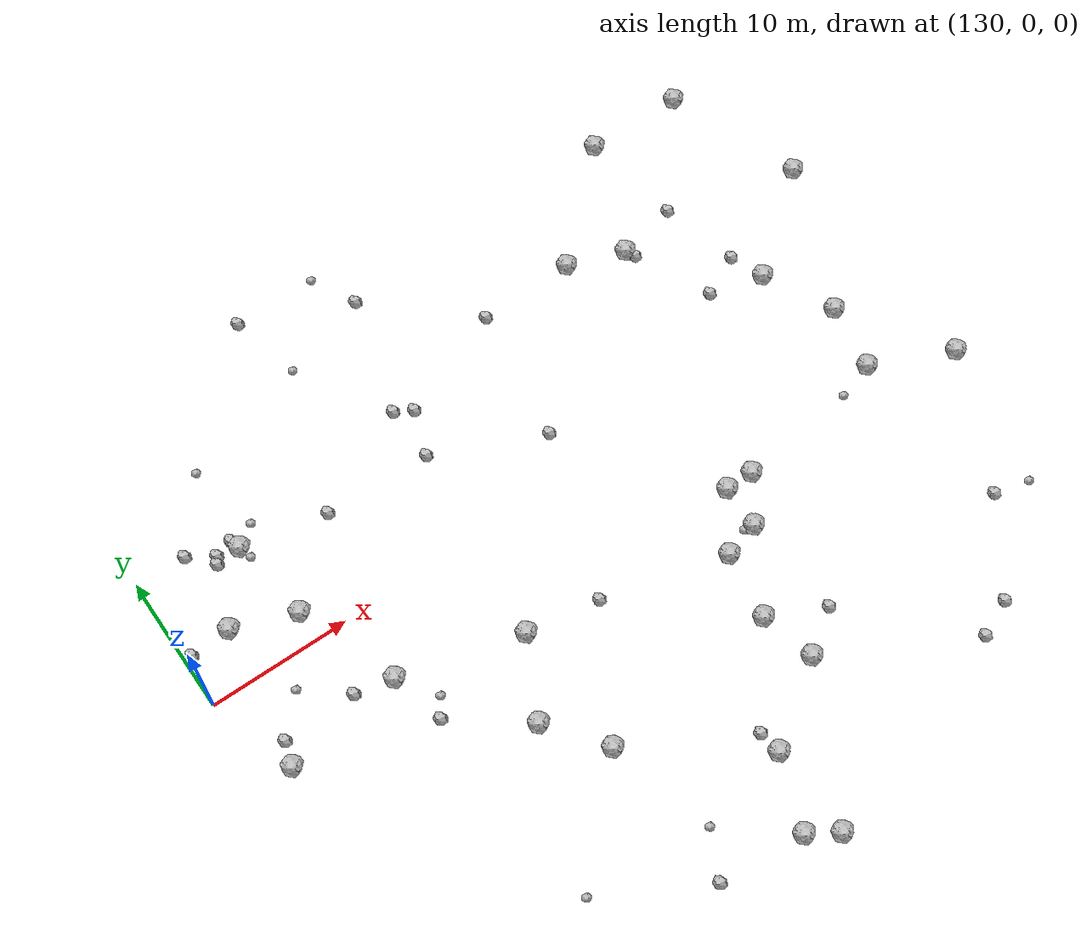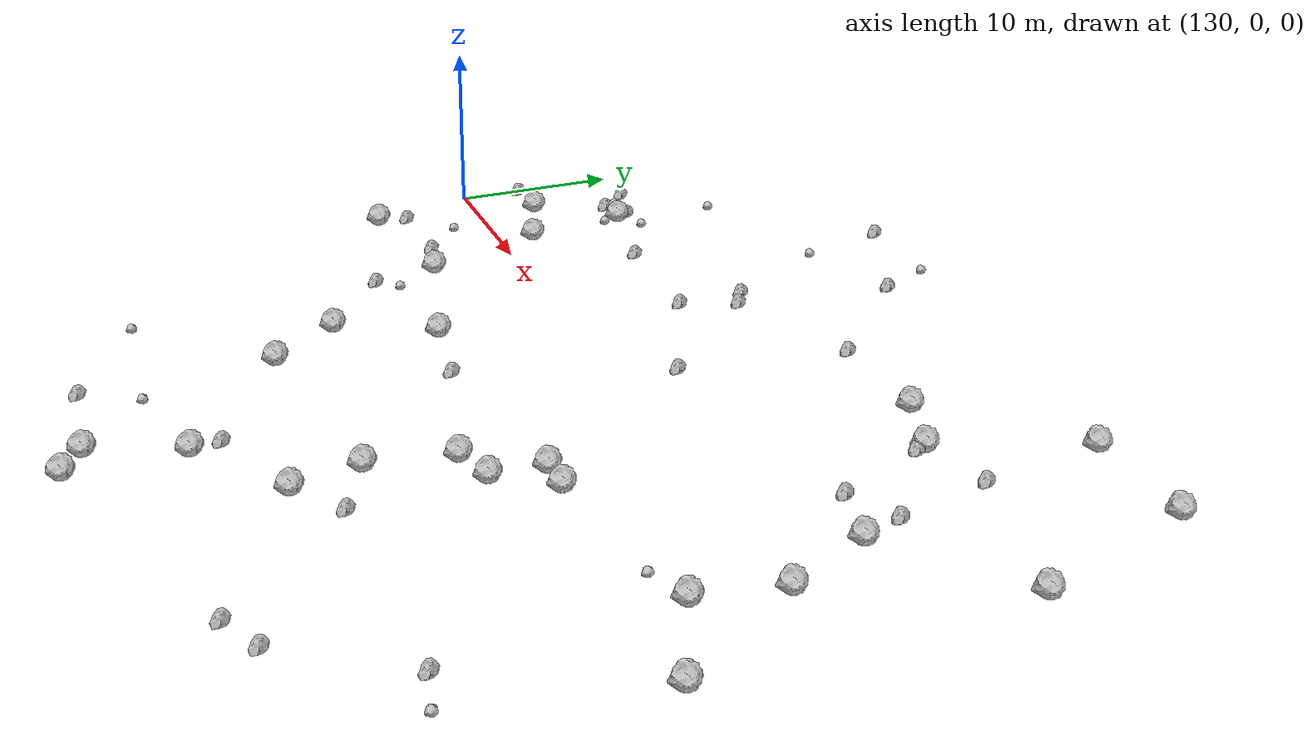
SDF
<sdf version="1.6">
 <world name="default">
  <include><uri>model://sun</uri></include>
  <model name="rock1_4_1">
   <include><uri>model://rock1</uri><pose>179.4233193781346 -4.788998100619832 0.5 0 0 0</pose></include>
  </model>
  <model name="rock1_4_2">
   <include><uri>model://rock1</uri><pose>158.15743904297324 -29.693134949644346 0.5 0 0 0</pose></include>
  </model>
  <model name="rock1_4_3">
   <include><uri>model://rock1</uri><pose>174.076537335667 20.308973531266645 0.5 0 0 0</pose></include>
  </model>
  <model name="rock1_4_4">
   <include><uri>model://rock1</uri><pose>133.47796123061727 3.7555610768192054 0.5 0 0 0</pose></include>
  </model>
  <model name="rock1_4_5">
   <include><uri>model://rock1</uri><pose>163.6280769529148 -19.343580105658702 0.5 0 0 0</pose></include>
  </model>
  <model name="rock1_4_6">
   <include><uri>model://rock1</uri><pose>185.180116824916 -7.347212345162937 0.5 0 0 0</pose></include>
  </model>
  <model name="rock1_4_7">
   <include><uri>model://rock1</uri><pose>163.41217308457206 -10.606714556488932 0.5 0 0 0</pose></include>
  </model>
  <model name="rock1_4_8">
   <include><uri>model://rock1</uri><pose>156.11835764479486 -28.408083762254655 0.5 0 0 0</pose></include>
  </model>
  <model name="rock1_4_9">
   <include><uri>model://rock1</uri><pose>168.12582563927776 -6.714252665071765 0.5 0 0 0</pose></include>
  </model>
  <model name="rock1_4_10">
   <include><uri>model://rock1</uri><pose>166.06387102436122 -6.7461950818041885 0.5 0 0 0</pose></include>
  </model>
  <model name="rock1_4_11">
   <include><uri>model://rock1</uri><pose>180.24713813117995 -0.014623437168733489 0.5 0 0 0</pose></include>
  </model>
  <model name="rock1_4_12">
   <include><uri>model://rock1</uri><pose>162.64235959858513 -15.416700261162731 0.5 0 0 0</pose></include>
  </model>
  <model name="rock1_4_13">
   <include><uri>model://rock1</uri><pose>149.4902388919994 -17.00719016924984 0.5 0 0 0</pose></include>
  </model>
  <model name="rock1_4_14">
   <include><uri>model://rock1</uri><pose>177.7285309436361 4.9363151266045975 0.5 0 0 0</pose></include>
  </model>
  <model name="rock1_4_15">
   <include><uri>model://rock1</uri><pose>158.03112286529137 -23.254799051644866 0.5 0 0 0</pose></include>
  </model>
  <model name="rock1_4_16">
   <include><uri>model://rock1</uri><pose>166.8865678438358 13.41355340934011 0.5 0 0 0</pose></include>
  </model>
  <model name="rock1_4_17">
   <include><uri>model://rock1</uri><pose>170.94679628920525 12.0215076721434 0.5 0 0 0</pose></include>
  </model>
  <model name="rock1_4_18">
   <include><uri>model://rock1</uri><pose>146.49821625659786 -12.989671830386097 0.5 0 0 0</pose></include>
  </model>
  <model name="rock1_4_19">
   <include><uri>model://rock1</uri><pose>137.01030046605743 8.28374513838277 0.5 0 0 0</pose></include>
  </model>
  <model name="rock1_4_20">
   <include><uri>model://rock1</uri><pose>165.98098550364756 -9.860884772138714 0.5 0 0 0</pose></include>
  </model>
  <model name="rock1_4_21">
   <include><uri>model://rock1</uri><pose>132.03909466207114 -6.433396118649625 0.5 0 0 0</pose></include>
  </model>
  <model name="rock1_4_22">
   <include><uri>model://rock1</uri><pose>137.90063161956928 2.1484784376054904 0.5 0 0 0</pose></include>
  </model>
  <model name="rock1_4_23">
   <include><uri>model://rock1</uri><pose>149.2731894444804 -7.485334119702227 0.5 0 0 0</pose></include>
  </model>
  <model name="rock1_4_24">
   <include><uri>model://rock1</uri><pose>181.07314480284975 20.30691012968584 0.5 0 0 0</pose></include>
  </model>
  <model name="rock1_4_25">
   <include><uri>model://rock1</uri><pose>184.66653216075215 10.610083500054841 0.5 0 0 0</pose></include>
  </model>
  <model name="rock1_4_26">
   <include><uri>model://rock1</uri><pose>140.56417218425636 -5.188748906612172 0.5 0 0 0</pose></include>
  </model>
  <model name="rock2_4_0">
   <include><uri>model://rock2</uri><pose>173.83419580697824 5.947439127961232 0.3 0 0 0</pose></include>
  </model>
  <model name="rock2_4_1">
   <include><uri>model://rock2</uri><pose>135.12607622085835 8.142590017378303 0.3 0 0 0</pose></include>
  </model>
  <model name="rock2_4_2">
   <include><uri>model://rock2</uri><pose>149.94508978697024 -27.87634559786989 0.3 0 0 0</pose></include>
  </model>
  <model name="rock2_4_3">
   <include><uri>model://rock2</uri><pose>173.75444132455613 -24.66728949345171 0.3 0 0 0</pose></include>
  </model>
  <model name="rock2_4_4">
   <include><uri>model://rock2</uri><pose>145.472224289501 22.69933645156516 0.3 0 0 0</pose></include>
  </model>
  <model name="rock2_4_5">
   <include><uri>model://rock2</uri><pose>143.10175001860532 7.094351074352744 0.3 0 0 0</pose></include>
  </model>
  <model name="rock2_4_6">
   <include><uri>model://rock2</uri><pose>136.72478518617186 9.046927248749995 0.3 0 0 0</pose></include>
  </model>
  <model name="rock2_4_7">
   <include><uri>model://rock2</uri><pose>175.27728971435124 13.042028322900947 0.3 0 0 0</pose></include>
  </model>
  <model name="rock2_4_8">
   <include><uri>model://rock2</uri><pose>157.76953294503107 -21.60010084441452 0.3 0 0 0</pose></include>
  </model>
  <model name="rock2_4_9">
   <include><uri>model://rock2</uri><pose>166.5876449445374 -17.24646824226821 0.3 0 0 0</pose></include>
  </model>
  <model name="rock2_4_10">
   <include><uri>model://rock2</uri><pose>158.56594320253853 3.501122474971659 0.3 0 0 0</pose></include>
  </model>
  <model name="rock2_4_11">
   <include><uri>model://rock2</uri><pose>176.75386873413842 7.418076121763406 0.3 0 0 0</pose></include>
  </model>
  <model name="rock2_4_12">
   <include><uri>model://rock2</uri><pose>141.4660717420078 -9.13380654619932 0.3 0 0 0</pose></include>
  </model>
  <model name="rock2_4_13">
   <include><uri>model://rock2</uri><pose>159.92706972367716 13.301466717898407 0.3 0 0 0</pose></include>
  </model>
  <model name="rock2_4_14">
   <include><uri>model://rock2</uri><pose>171.26716374235016 11.374963366535944 0.3 0 0 0</pose></include>
  </model>
  <model name="rock2_4_15">
   <include><uri>model://rock2</uri><pose>130.50676676102745 3.6299880277661885 0.3 0 0 0</pose></include>
  </model>
  <model name="rock2_4_16">
   <include><uri>model://rock2</uri><pose>153.10331045055148 19.514145229628113 0.3 0 0 0</pose></include>
  </model>
  <model name="rock2_4_17">
   <include><uri>model://rock2</uri><pose>133.62665125305688 9.829601044043265 0.3 0 0 0</pose></include>
  </model>
  <model name="rock2_4_18">
   <include><uri>model://rock2</uri><pose>176.31714026901614 -23.492740223582967 0.3 0 0 0</pose></include>
  </model>
  <model name="rock2_4_19">
   <include><uri>model://rock2</uri><pose>180.59031056542747 -17.158552046714984 0.3 0 0 0</pose></include>
  </model>
  <model name="rock2_4_20">
   <include><uri>model://rock2</uri><pose>151.9638263477626 10.171456821738147 0.3 0 0 0</pose></include>
  </model>
  <model name="rock2_4_21">
   <include><uri>model://rock2</uri><pose>132.51286338428346 -4.69128203512274 0.3 0 0 0</pose></include>
  </model>
  <model name="rock2_4_22">
   <include><uri>model://rock2</uri><pose>154.49258310894928 -8.281209939495874 0.3 0 0 0</pose></include>
  </model>
  <model name="rock2_4_23">
   <include><uri>model://rock2</uri><pose>137.78137144571863 -4.561062623686741 0.3 0 0 0</pose></include>
  </model>
  <model name="rock2_4_24">
   <include><uri>model://rock2</uri><pose>135.42224343102376 8.675017067772664 0.3 0 0 0</pose></include>
  </model>
  <model name="rock2_4_25">
   <include><uri>model://rock2</uri><pose>150.79702573247636 6.880659934765944 0.3 0 0 0</pose></include>
  </model>
  <model name="rock2_4_26">
   <include><uri>model://rock2</uri><pose>150.70674281106326 10.888159185177152 0.3 0 0 0</pose></include>
  </model>
  <model name="rock3_4_0">
   <include><uri>model://rock3</uri><pose>137.3233876700532 14.584272658700456 0.2 0 0 0</pose></include>
  </model>
  <model name="rock3_4_1">
   <include><uri>model://rock3</uri><pose>183.11355531780137 -17.800978451392794 0.2 0 0 0</pose></include>
  </model>
  <model name="rock3_4_2">
   <include><uri>model://rock3</uri><pose>142.58938230304776 -23.93757672200885 0.2 0 0 0</pose></include>
  </model>
  <model name="rock3_4_3">
   <include><uri>model://rock3</uri><pose>176.71992259802707 -5.657126090714613 0.2 0 0 0</pose></include>
  </model>
  <model name="rock3_4_4">
   <include><uri>model://rock3</uri><pose>151.46565891276452 22.698512832231515 0.2 0 0 0</pose></include>
  </model>
  <model name="rock3_4_5">
   <include><uri>model://rock3</uri><pose>134.86474748655806 -2.21623335571638 0.2 0 0 0</pose></include>
  </model>
  <model name="rock3_4_6">
   <include><uri>model://rock3</uri><pose>142.31814773432774 -7.858872118211881 0.2 0 0 0</pose></include>
  </model>
  <model name="rock3_4_7">
   <include><uri>model://rock3</uri><pose>137.22467566010792 7.311972103435217 0.2 0 0 0</pose></include>
  </model>
  <model name="rock3_4_8">
   <include><uri>model://rock3</uri><pose>138.4707097100484 9.375257357190485 0.2 0 0 0</pose></include>
  </model>
  <model name="rock3_4_9">
   <include><uri>model://rock3</uri><pose>151.51015234264332 -24.677037532003233 0.2 0 0 0</pose></include>
  </model>
  <model name="rock3_4_10">
   <include><uri>model://rock3</uri><pose>146.71418556853507 17.44206219768523 0.2 0 0 0</pose></include>
  </model>
  <model name="rock3_4_11">
   <include><uri>model://rock3</uri><pose>165.23707094059174 -9.74270318883702 0.2 0 0 0</pose></include>
  </model>
 </world>
</sdf>
